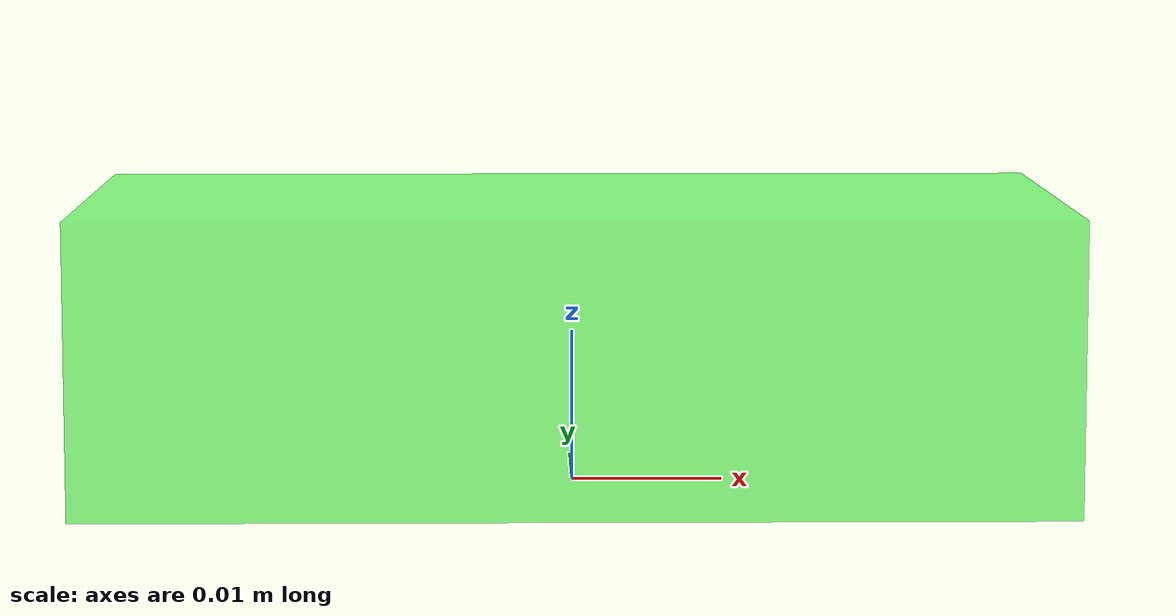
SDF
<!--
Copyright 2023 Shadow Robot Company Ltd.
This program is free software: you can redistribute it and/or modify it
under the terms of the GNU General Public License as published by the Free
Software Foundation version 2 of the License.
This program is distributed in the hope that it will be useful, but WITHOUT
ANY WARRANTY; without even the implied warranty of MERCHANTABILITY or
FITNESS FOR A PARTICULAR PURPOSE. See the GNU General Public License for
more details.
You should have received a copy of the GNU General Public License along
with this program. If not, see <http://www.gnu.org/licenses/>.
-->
<?xml version='1.0'?>

<sdf version="1.4">
<model name="duplo_2x4x1_simplified">
  <pose>0 0 0 0 0 0</pose>
  <static>true</static>
    <link name="link">
    <pose>0 0 0.0095 0 0 0</pose>
      <visual name="visual">
        <transparency>0.5</transparency>
        <geometry>
          <box>
            <size>0.064 0.032 0.019</size>
          </box>
        </geometry>
        <material>
          <ambient>0 1 0 1</ambient>
          <diffuse>0 1 0 1</diffuse>
          <specular>0 0.1 0 1</specular>
          <emissive>0 0 0 0</emissive>
        </material>
      </visual>
    </link>
  </model>
</sdf>
